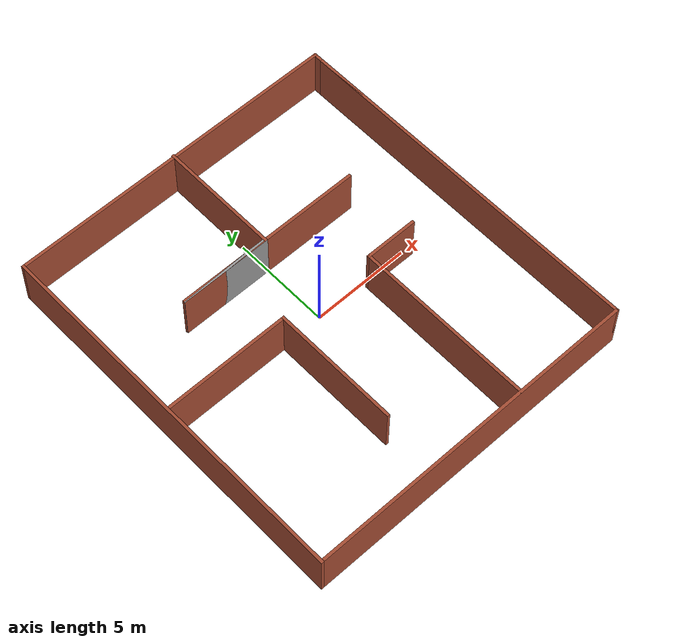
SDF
<?xml version='1.0'?>
<sdf version='1.7'>
  <model name='main'>
    <pose>-0.051929 0.037415 0 0 -0 0</pose>
    <link name='Wall_0'>
      <collision name='Wall_0_Collision'>
        <geometry>
          <box>
            <size>19 0.15 2.5</size>
          </box>
        </geometry>
        <pose>0 0 1.25 0 -0 0</pose>
      </collision>
      <visual name='Wall_0_Visual'>
        <pose>0 0 1.25 0 -0 0</pose>
        <geometry>
          <box>
            <size>19 0.15 2.5</size>
          </box>
        </geometry>
        <material>
          <script>
            <uri>file://media/materials/scripts/gazebo.material</uri>
            <name>Gazebo/Bricks</name>
          </script>
          <ambient>1 1 1 1</ambient>
        </material>
        <meta>
          <layer>0</layer>
        </meta>
      </visual>
      <pose>-8.55 -0.02824 0 0 -0 -1.5708</pose>
    </link>
    <link name='Wall_11'>
      <collision name='Wall_11_Collision'>
        <geometry>
          <box>
            <size>9.25 0.15 2.5</size>
          </box>
        </geometry>
        <pose>0 0 1.25 0 -0 0</pose>
      </collision>
      <visual name='Wall_11_Visual'>
        <pose>0 0 1.25 0 -0 0</pose>
        <geometry>
          <box>
            <size>9.25 0.15 2.5</size>
          </box>
        </geometry>
        <material>
          <script>
            <uri>file://media/materials/scripts/gazebo.material</uri>
            <name>Gazebo/Bricks</name>
          </script>
          <ambient>1 1 1 1</ambient>
        </material>
        <meta>
          <layer>0</layer>
        </meta>
      </visual>
      <pose>2.72683 -4.87501 0 0 -0 -1.5708</pose>
    </link>
    <link name='Wall_13'>
      <collision name='Wall_13_Collision'>
        <geometry>
          <box>
            <size>2.75 0.15 2.5</size>
          </box>
        </geometry>
        <pose>0 0 1.25 0 -0 0</pose>
      </collision>
      <visual name='Wall_13_Visual'>
        <pose>0 0 1.25 0 -0 0</pose>
        <geometry>
          <box>
            <size>2.75 0.15 2.5</size>
          </box>
        </geometry>
        <material>
          <script>
            <uri>file://media/materials/scripts/gazebo.material</uri>
            <name>Gazebo/Bricks</name>
          </script>
          <ambient>1 1 1 1</ambient>
        </material>
        <meta>
          <layer>0</layer>
        </meta>
      </visual>
      <pose>4.02683 -0.325006 0 0 -0 0</pose>
    </link>
    <link name='Wall_15'>
      <collision name='Wall_15_Collision'>
        <geometry>
          <box>
            <size>6.25 0.15 2.5</size>
          </box>
        </geometry>
        <pose>0 0 1.25 0 -0 0</pose>
      </collision>
      <visual name='Wall_15_Visual'>
        <pose>0 0 1.25 0 -0 0</pose>
        <geometry>
          <box>
            <size>6.25 0.15 2.5</size>
          </box>
        </geometry>
        <material>
          <script>
            <uri>file://media/materials/scripts/gazebo.material</uri>
            <name>Gazebo/Bricks</name>
          </script>
          <ambient>1 1 1 1</ambient>
        </material>
        <meta>
          <layer>0</layer>
        </meta>
      </visual>
      <pose>0.00666 6.40324 0 0 -0 -1.5708</pose>
    </link>
    <link name='Wall_16'>
      <collision name='Wall_16_Collision'>
        <geometry>
          <box>
            <size>4.75 0.15 2.5</size>
          </box>
        </geometry>
        <pose>0 0 1.25 0 -0 0</pose>
      </collision>
      <visual name='Wall_16_Visual'>
        <pose>0 0 1.25 0 -0 0</pose>
        <geometry>
          <box>
            <size>4.75 0.15 2.5</size>
          </box>
        </geometry>
        <material>
          <script>
            <uri>file://media/materials/scripts/gazebo.material</uri>
            <name>Gazebo/Grey</name>
          </script>
          <ambient>1 1 1 1</ambient>
        </material>
        <meta>
          <layer>0</layer>
        </meta>
      </visual>
      <pose>-2.29334 3.35324 0 0 -0 3.14159</pose>
    </link>
    <link name='Wall_17'>
      <collision name='Wall_17_Collision'>
        <geometry>
          <box>
            <size>9.75 0.15 2.5</size>
          </box>
        </geometry>
        <pose>0 0 1.25 0 -0 0</pose>
      </collision>
      <visual name='Wall_17_Visual'>
        <pose>0 0 1.25 0 -0 0</pose>
        <geometry>
          <box>
            <size>9.75 0.15 2.5</size>
          </box>
        </geometry>
        <material>
          <script>
            <uri>file://media/materials/scripts/gazebo.material</uri>
            <name>Gazebo/Bricks</name>
          </script>
          <ambient>1 1 1 1</ambient>
        </material>
        <meta>
          <layer>0</layer>
        </meta>
      </visual>
      <pose>0.20666 3.35324 0 0 -0 0</pose>
    </link>
    <link name='Wall_2'>
      <collision name='Wall_2_Collision'>
        <geometry>
          <box>
            <size>17.25 0.15 2.5</size>
          </box>
        </geometry>
        <pose>0 0 1.25 0 -0 0</pose>
      </collision>
      <visual name='Wall_2_Visual'>
        <pose>0 0 1.25 0 -0 0</pose>
        <geometry>
          <box>
            <size>17.25 0.15 2.5</size>
          </box>
        </geometry>
        <material>
          <script>
            <uri>file://media/materials/scripts/gazebo.material</uri>
            <name>Gazebo/Bricks</name>
          </script>
          <ambient>1 1 1 1</ambient>
        </material>
        <meta>
          <layer>0</layer>
        </meta>
      </visual>
      <pose>-0 -9.45324 0 0 -0 0</pose>
    </link>
    <link name='Wall_3'>
      <collision name='Wall_3_Collision'>
        <geometry>
          <box>
            <size>18.5 0.15 2.5</size>
          </box>
        </geometry>
        <pose>0 0 1.25 0 -0 0</pose>
      </collision>
      <visual name='Wall_3_Visual'>
        <pose>0 0 1.25 0 -0 0</pose>
        <geometry>
          <box>
            <size>18.5 0.15 2.5</size>
          </box>
        </geometry>
        <material>
          <script>
            <uri>file://media/materials/scripts/gazebo.material</uri>
            <name>Gazebo/Bricks</name>
          </script>
          <ambient>1 1 1 1</ambient>
        </material>
        <meta>
          <layer>0</layer>
        </meta>
      </visual>
      <pose>8.55 -0.27824 0 0 -0 1.5708</pose>
    </link>
    <link name='Wall_5'>
      <collision name='Wall_5_Collision'>
        <geometry>
          <box>
            <size>17.25 0.15 2.5</size>
          </box>
        </geometry>
        <pose>0 0 1.25 0 -0 0</pose>
      </collision>
      <visual name='Wall_5_Visual'>
        <pose>0 0 1.25 0 -0 0</pose>
        <geometry>
          <box>
            <size>17.25 0.15 2.5</size>
          </box>
        </geometry>
        <material>
          <script>
            <uri>file://media/materials/scripts/gazebo.material</uri>
            <name>Gazebo/Bricks</name>
          </script>
          <ambient>1 1 1 1</ambient>
        </material>
        <meta>
          <layer>0</layer>
        </meta>
      </visual>
      <pose>-0 9.39676 0 0 -0 0</pose>
    </link>
    <link name='Wall_6'>
      <collision name='Wall_6_Collision'>
        <geometry>
          <box>
            <size>3.25 0.15 2.5</size>
          </box>
        </geometry>
        <pose>0 0 1.25 0 -0 0</pose>
      </collision>
      <visual name='Wall_6_Visual'>
        <pose>0 0 1.25 0 -0 0</pose>
        <geometry>
          <box>
            <size>3.25 0.15 2.5</size>
          </box>
        </geometry>
        <material>
          <script>
            <uri>file://media/materials/scripts/gazebo.material</uri>
            <name>Gazebo/Bricks</name>
          </script>
          <ambient>1 1 1 1</ambient>
        </material>
        <meta>
          <layer>0</layer>
        </meta>
      </visual>
      <pose>8.55 7.84676 0 0 -0 -1.5708</pose>
    </link>
    <link name='Wall_8'>
      <collision name='Wall_8_Collision'>
        <geometry>
          <box>
            <size>6.5 0.15 2.5</size>
          </box>
        </geometry>
        <pose>0 0 1.25 0 -0 0</pose>
      </collision>
      <visual name='Wall_8_Visual'>
        <pose>0 0 1.25 0 -0 0</pose>
        <geometry>
          <box>
            <size>6.5 0.15 2.5</size>
          </box>
        </geometry>
        <material>
          <script>
            <uri>file://media/materials/scripts/gazebo.material</uri>
            <name>Gazebo/Bricks</name>
          </script>
          <ambient>1 1 1 1</ambient>
        </material>
        <meta>
          <layer>0</layer>
        </meta>
      </visual>
      <pose>-5.26391 -0.122728 0 0 -0 0</pose>
    </link>
    <link name='Wall_9'>
      <collision name='Wall_9_Collision'>
        <geometry>
          <box>
            <size>6.5 0.15 2.5</size>
          </box>
        </geometry>
        <pose>0 0 1.25 0 -0 0</pose>
      </collision>
      <visual name='Wall_9_Visual'>
        <pose>0 0 1.25 0 -0 0</pose>
        <geometry>
          <box>
            <size>6.5 0.15 2.5</size>
          </box>
        </geometry>
        <material>
          <script>
            <uri>file://media/materials/scripts/gazebo.material</uri>
            <name>Gazebo/Bricks</name>
          </script>
          <ambient>1 1 1 1</ambient>
        </material>
        <meta>
          <layer>0</layer>
        </meta>
      </visual>
      <pose>-2.08891 -3.29773 0 0 -0 -1.5708</pose>
    </link>
    <static>1</static>
  </model>
</sdf>
